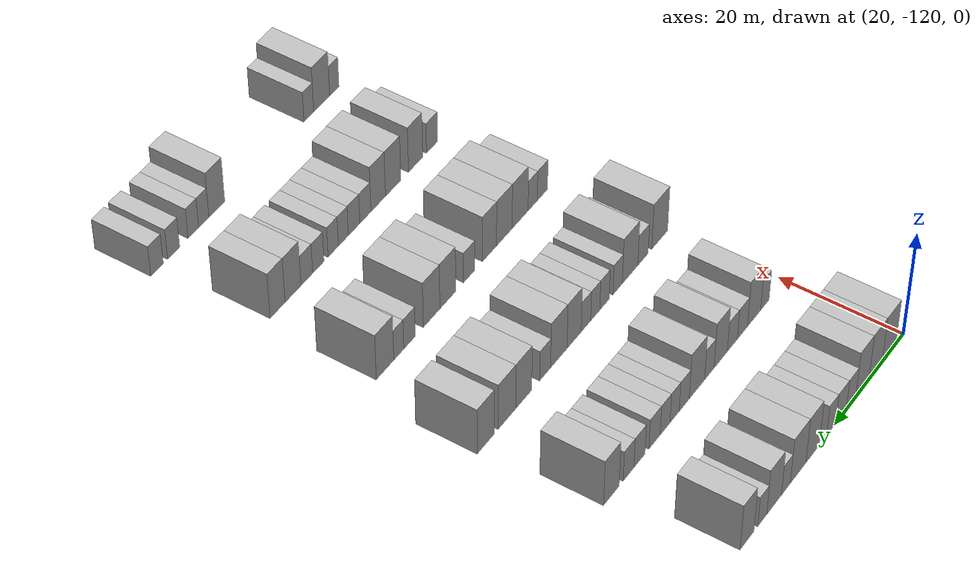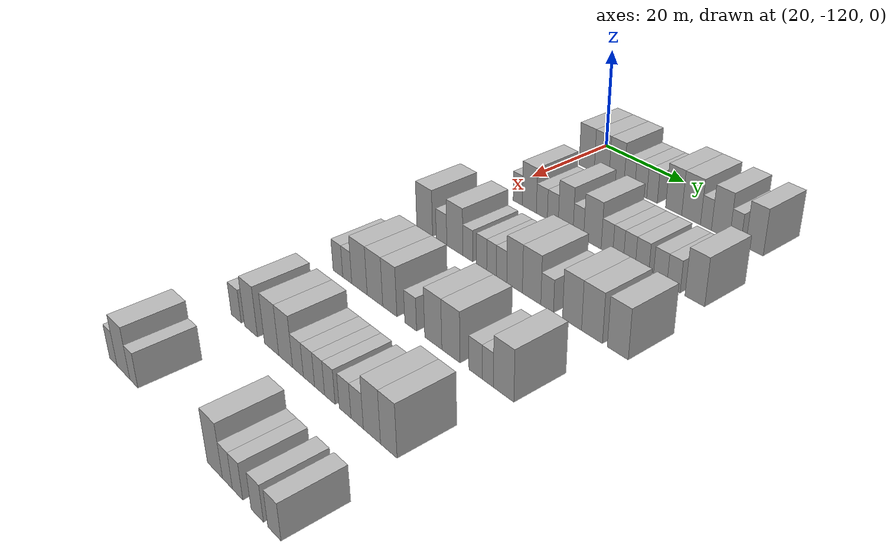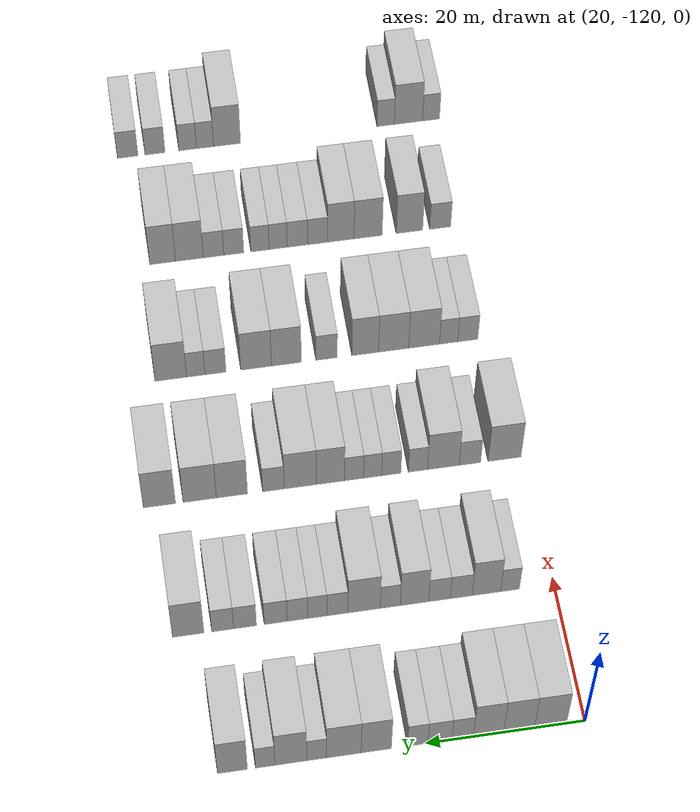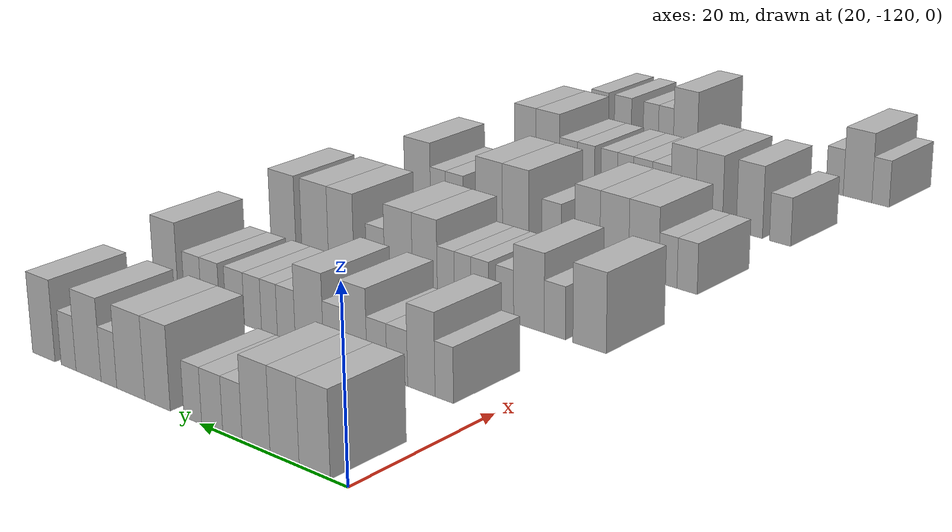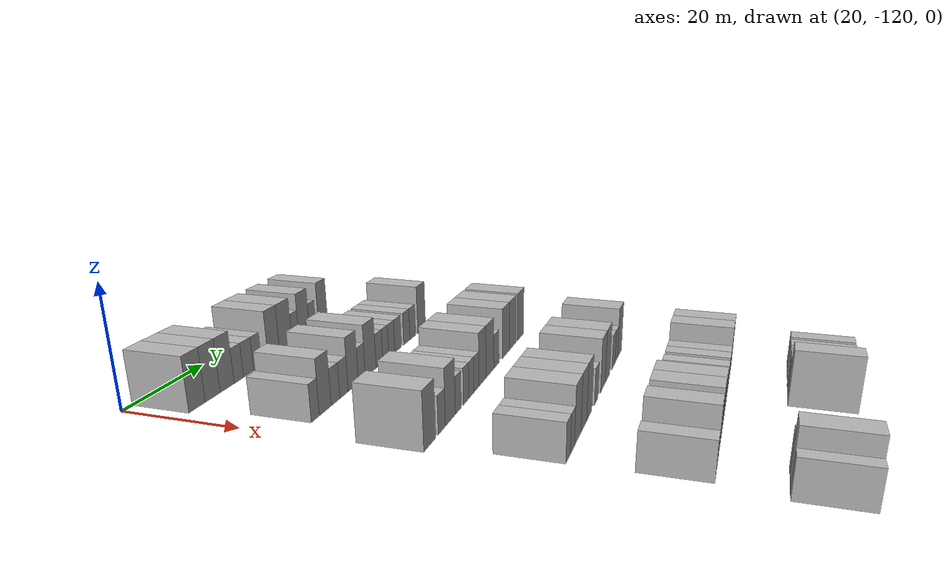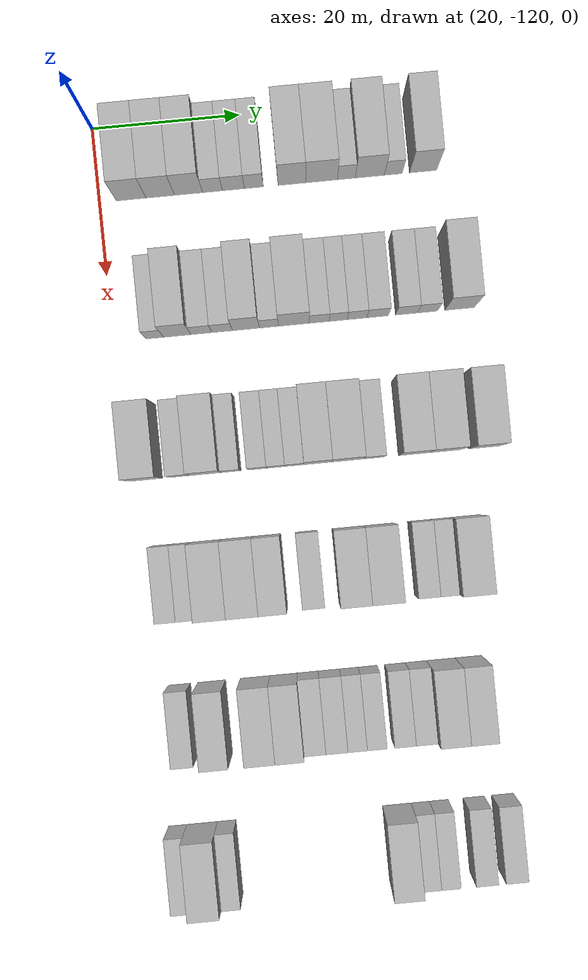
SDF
<sdf version="1.6">
 <world name="default">
  <model name="building_58">
   <static>1</static>
   <pose>25.0000 -115.6798 0 0.000000 0.000000 0.000000</pose>
   <link name="link">
    <pose>0 0 4.50 0 0 0</pose>
    <collision name="collision"><geometry><box><size>10.0000 4.0421 9.0000</size></box></geometry></collision>
    <visual name="visual">
     <cast_shadows>0</cast_shadows>
     <geometry><box><size>10.0000 4.0421 9.0000</size></box></geometry>
     <material>
      <script>
       <uri>model://HANNAS_wall/materials/scripts</uri>
       <uri>model://HANNAS_wall/materials/textures</uri>
       <name>vrc/HANNAS_wall</name>
      </script>
     </material>
    </visual>
   </link>
  </model>
  <model name="building_59">
   <static>1</static>
   <pose>25.0000 -111.7224 0 0.000000 0.000000 0.000000</pose>
   <link name="link">
    <pose>0 0 4.50 0 0 0</pose>
    <collision name="collision"><geometry><box><size>10.0000 3.8728 9.0000</size></box></geometry></collision>
    <visual name="visual">
     <cast_shadows>0</cast_shadows>
     <geometry><box><size>10.0000 3.8728 9.0000</size></box></geometry>
     <material>
      <script>
       <uri>model://HANNAS_wall/materials/scripts</uri>
       <uri>model://HANNAS_wall/materials/textures</uri>
       <name>vrc/HANNAS_wall</name>
      </script>
     </material>
    </visual>
   </link>
  </model>
  <model name="building_60">
   <static>1</static>
   <pose>25.0000 -107.8807 0 0.000000 0.000000 0.000000</pose>
   <link name="link">
    <pose>0 0 4.50 0 0 0</pose>
    <collision name="collision"><geometry><box><size>10.0000 3.8105 9.0000</size></box></geometry></collision>
    <visual name="visual">
     <cast_shadows>0</cast_shadows>
     <geometry><box><size>10.0000 3.8105 9.0000</size></box></geometry>
     <material>
      <script>
       <uri>model://HANNAS_wall/materials/scripts</uri>
       <uri>model://HANNAS_wall/materials/textures</uri>
       <name>vrc/HANNAS_wall</name>
      </script>
     </material>
    </visual>
   </link>
  </model>
  <model name="building_61">
   <static>1</static>
   <pose>25.0000 -104.6251 0 0.000000 0.000000 0.000000</pose>
   <link name="link">
    <pose>0 0 3.00 0 0 0</pose>
    <collision name="collision"><geometry><box><size>10.0000 2.7008 6.0000</size></box></geometry></collision>
    <visual name="visual">
     <cast_shadows>0</cast_shadows>
     <geometry><box><size>10.0000 2.7008 6.0000</size></box></geometry>
     <material>
      <script>
       <uri>model://HANNAS_wall/materials/scripts</uri>
       <uri>model://HANNAS_wall/materials/textures</uri>
       <name>vrc/HANNAS_wall</name>
      </script>
     </material>
    </visual>
   </link>
  </model>
  <model name="building_62">
   <static>1</static>
   <pose>25.0000 -101.7786 0 0.000000 0.000000 0.000000</pose>
   <link name="link">
    <pose>0 0 3.00 0 0 0</pose>
    <collision name="collision"><geometry><box><size>10.0000 2.9922 6.0000</size></box></geometry></collision>
    <visual name="visual">
     <cast_shadows>0</cast_shadows>
     <geometry><box><size>10.0000 2.9922 6.0000</size></box></geometry>
     <material>
      <script>
       <uri>model://HANNAS_wall/materials/scripts</uri>
       <uri>model://HANNAS_wall/materials/textures</uri>
       <name>vrc/HANNAS_wall</name>
      </script>
     </material>
    </visual>
   </link>
  </model>
  <model name="building_63">
   <static>1</static>
   <pose>25.0000 -99.0015 0 0.000000 0.000000 0.000000</pose>
   <link name="link">
    <pose>0 0 3.00 0 0 0</pose>
    <collision name="collision"><geometry><box><size>10.0000 2.5620 6.0000</size></box></geometry></collision>
    <visual name="visual">
     <cast_shadows>0</cast_shadows>
     <geometry><box><size>10.0000 2.5620 6.0000</size></box></geometry>
     <material>
      <script>
       <uri>model://HANNAS_wall/materials/scripts</uri>
       <uri>model://HANNAS_wall/materials/textures</uri>
       <name>vrc/HANNAS_wall</name>
      </script>
     </material>
    </visual>
   </link>
  </model>
  <model name="building_64">
   <static>1</static>
   <pose>25.0000 -93.8390 0 0.000000 0.000000 0.000000</pose>
   <link name="link">
    <pose>0 0 4.50 0 0 0</pose>
    <collision name="collision"><geometry><box><size>10.0000 3.7630 9.0000</size></box></geometry></collision>
    <visual name="visual">
     <cast_shadows>0</cast_shadows>
     <geometry><box><size>10.0000 3.7630 9.0000</size></box></geometry>
     <material>
      <script>
       <uri>model://HANNAS_wall/materials/scripts</uri>
       <uri>model://HANNAS_wall/materials/textures</uri>
       <name>vrc/HANNAS_wall</name>
      </script>
     </material>
    </visual>
   </link>
  </model>
  <model name="building_65">
   <static>1</static>
   <pose>25.0000 -89.8114 0 0.000000 0.000000 0.000000</pose>
   <link name="link">
    <pose>0 0 4.50 0 0 0</pose>
    <collision name="collision"><geometry><box><size>10.0000 4.2922 9.0000</size></box></geometry></collision>
    <visual name="visual">
     <cast_shadows>0</cast_shadows>
     <geometry><box><size>10.0000 4.2922 9.0000</size></box></geometry>
     <material>
      <script>
       <uri>model://HANNAS_wall/materials/scripts</uri>
       <uri>model://HANNAS_wall/materials/textures</uri>
       <name>vrc/HANNAS_wall</name>
      </script>
     </material>
    </visual>
   </link>
  </model>
  <model name="building_66">
   <static>1</static>
   <pose>25.0000 -86.4455 0 0.000000 0.000000 0.000000</pose>
   <link name="link">
    <pose>0 0 3.00 0 0 0</pose>
    <collision name="collision"><geometry><box><size>10.0000 2.4396 6.0000</size></box></geometry></collision>
    <visual name="visual">
     <cast_shadows>0</cast_shadows>
     <geometry><box><size>10.0000 2.4396 6.0000</size></box></geometry>
     <material>
      <script>
       <uri>model://HANNAS_wall/materials/scripts</uri>
       <uri>model://HANNAS_wall/materials/textures</uri>
       <name>vrc/HANNAS_wall</name>
      </script>
     </material>
    </visual>
   </link>
  </model>
  <model name="building_67">
   <static>1</static>
   <pose>25.0000 -83.2430 0 0.000000 0.000000 0.000000</pose>
   <link name="link">
    <pose>0 0 4.50 0 0 0</pose>
    <collision name="collision"><geometry><box><size>10.0000 3.9654 9.0000</size></box></geometry></collision>
    <visual name="visual">
     <cast_shadows>0</cast_shadows>
     <geometry><box><size>10.0000 3.9654 9.0000</size></box></geometry>
     <material>
      <script>
       <uri>model://HANNAS_wall/materials/scripts</uri>
       <uri>model://HANNAS_wall/materials/textures</uri>
       <name>vrc/HANNAS_wall</name>
      </script>
     </material>
    </visual>
   </link>
  </model>
  <model name="building_68">
   <static>1</static>
   <pose>25.0000 -80.0603 0 0.000000 0.000000 0.000000</pose>
   <link name="link">
    <pose>0 0 3.00 0 0 0</pose>
    <collision name="collision"><geometry><box><size>10.0000 2.4002 6.0000</size></box></geometry></collision>
    <visual name="visual">
     <cast_shadows>0</cast_shadows>
     <geometry><box><size>10.0000 2.4002 6.0000</size></box></geometry>
     <material>
      <script>
       <uri>model://HANNAS_wall/materials/scripts</uri>
       <uri>model://HANNAS_wall/materials/textures</uri>
       <name>vrc/HANNAS_wall</name>
      </script>
     </material>
    </visual>
   </link>
  </model>
  <model name="building_69">
   <static>1</static>
   <pose>25.0000 -76.0189 0 0.000000 0.000000 0.000000</pose>
   <link name="link">
    <pose>0 0 4.50 0 0 0</pose>
    <collision name="collision"><geometry><box><size>10.0000 3.6826 9.0000</size></box></geometry></collision>
    <visual name="visual">
     <cast_shadows>0</cast_shadows>
     <geometry><box><size>10.0000 3.6826 9.0000</size></box></geometry>
     <material>
      <script>
       <uri>model://HANNAS_wall/materials/scripts</uri>
       <uri>model://HANNAS_wall/materials/textures</uri>
       <name>vrc/HANNAS_wall</name>
      </script>
     </material>
    </visual>
   </link>
  </model>
  <model name="building_234">
   <static>1</static>
   <pose>44.0000 -114.2796 0 0.000000 0.000000 0.000000</pose>
   <link name="link">
    <pose>0 0 3.00 0 0 0</pose>
    <collision name="collision"><geometry><box><size>10.0000 2.4481 6.0000</size></box></geometry></collision>
    <visual name="visual">
     <cast_shadows>0</cast_shadows>
     <geometry><box><size>10.0000 2.4481 6.0000</size></box></geometry>
     <material>
      <script>
       <uri>model://HANNAS_wall/materials/scripts</uri>
       <uri>model://HANNAS_wall/materials/textures</uri>
       <name>vrc/HANNAS_wall</name>
      </script>
     </material>
    </visual>
   </link>
  </model>
  <model name="building_235">
   <static>1</static>
   <pose>44.0000 -111.2006 0 0.000000 0.000000 0.000000</pose>
   <link name="link">
    <pose>0 0 4.50 0 0 0</pose>
    <collision name="collision"><geometry><box><size>10.0000 3.7098 9.0000</size></box></geometry></collision>
    <visual name="visual">
     <cast_shadows>0</cast_shadows>
     <geometry><box><size>10.0000 3.7098 9.0000</size></box></geometry>
     <material>
      <script>
       <uri>model://HANNAS_wall/materials/scripts</uri>
       <uri>model://HANNAS_wall/materials/textures</uri>
       <name>vrc/HANNAS_wall</name>
      </script>
     </material>
    </visual>
   </link>
  </model>
  <model name="building_236">
   <static>1</static>
   <pose>44.0000 -107.9247 0 0.000000 0.000000 0.000000</pose>
   <link name="link">
    <pose>0 0 3.00 0 0 0</pose>
    <collision name="collision"><geometry><box><size>10.0000 2.8421 6.0000</size></box></geometry></collision>
    <visual name="visual">
     <cast_shadows>0</cast_shadows>
     <geometry><box><size>10.0000 2.8421 6.0000</size></box></geometry>
     <material>
      <script>
       <uri>model://HANNAS_wall/materials/scripts</uri>
       <uri>model://HANNAS_wall/materials/textures</uri>
       <name>vrc/HANNAS_wall</name>
      </script>
     </material>
    </visual>
   </link>
  </model>
  <model name="building_237">
   <static>1</static>
   <pose>44.0000 -105.1147 0 0.000000 0.000000 0.000000</pose>
   <link name="link">
    <pose>0 0 3.00 0 0 0</pose>
    <collision name="collision"><geometry><box><size>10.0000 2.7779 6.0000</size></box></geometry></collision>
    <visual name="visual">
     <cast_shadows>0</cast_shadows>
     <geometry><box><size>10.0000 2.7779 6.0000</size></box></geometry>
     <material>
      <script>
       <uri>model://HANNAS_wall/materials/scripts</uri>
       <uri>model://HANNAS_wall/materials/textures</uri>
       <name>vrc/HANNAS_wall</name>
      </script>
     </material>
    </visual>
   </link>
  </model>
  <model name="building_238">
   <static>1</static>
   <pose>44.0000 -101.8880 0 0.000000 0.000000 0.000000</pose>
   <link name="link">
    <pose>0 0 4.50 0 0 0</pose>
    <collision name="collision"><geometry><box><size>10.0000 3.6756 9.0000</size></box></geometry></collision>
    <visual name="visual">
     <cast_shadows>0</cast_shadows>
     <geometry><box><size>10.0000 3.6756 9.0000</size></box></geometry>
     <material>
      <script>
       <uri>model://HANNAS_wall/materials/scripts</uri>
       <uri>model://HANNAS_wall/materials/textures</uri>
       <name>vrc/HANNAS_wall</name>
      </script>
     </material>
    </visual>
   </link>
  </model>
  <model name="building_239">
   <static>1</static>
   <pose>44.0000 -98.7600 0 0.000000 0.000000 0.000000</pose>
   <link name="link">
    <pose>0 0 3.00 0 0 0</pose>
    <collision name="collision"><geometry><box><size>10.0000 2.5803 6.0000</size></box></geometry></collision>
    <visual name="visual">
     <cast_shadows>0</cast_shadows>
     <geometry><box><size>10.0000 2.5803 6.0000</size></box></geometry>
     <material>
      <script>
       <uri>model://HANNAS_wall/materials/scripts</uri>
       <uri>model://HANNAS_wall/materials/textures</uri>
       <name>vrc/HANNAS_wall</name>
      </script>
     </material>
    </visual>
   </link>
  </model>
  <model name="building_240">
   <static>1</static>
   <pose>44.0000 -95.3832 0 0.000000 0.000000 0.000000</pose>
   <link name="link">
    <pose>0 0 4.50 0 0 0</pose>
    <collision name="collision"><geometry><box><size>10.0000 4.1734 9.0000</size></box></geometry></collision>
    <visual name="visual">
     <cast_shadows>0</cast_shadows>
     <geometry><box><size>10.0000 4.1734 9.0000</size></box></geometry>
     <material>
      <script>
       <uri>model://HANNAS_wall/materials/scripts</uri>
       <uri>model://HANNAS_wall/materials/textures</uri>
       <name>vrc/HANNAS_wall</name>
      </script>
     </material>
    </visual>
   </link>
  </model>
  <model name="building_241">
   <static>1</static>
   <pose>44.0000 -91.9463 0 0.000000 0.000000 0.000000</pose>
   <link name="link">
    <pose>0 0 3.00 0 0 0</pose>
    <collision name="collision"><geometry><box><size>10.0000 2.7004 6.0000</size></box></geometry></collision>
    <visual name="visual">
     <cast_shadows>0</cast_shadows>
     <geometry><box><size>10.0000 2.7004 6.0000</size></box></geometry>
     <material>
      <script>
       <uri>model://HANNAS_wall/materials/scripts</uri>
       <uri>model://HANNAS_wall/materials/textures</uri>
       <name>vrc/HANNAS_wall</name>
      </script>
     </material>
    </visual>
   </link>
  </model>
  <model name="building_242">
   <static>1</static>
   <pose>44.0000 -89.3779 0 0.000000 0.000000 0.000000</pose>
   <link name="link">
    <pose>0 0 3.00 0 0 0</pose>
    <collision name="collision"><geometry><box><size>10.0000 2.4364 6.0000</size></box></geometry></collision>
    <visual name="visual">
     <cast_shadows>0</cast_shadows>
     <geometry><box><size>10.0000 2.4364 6.0000</size></box></geometry>
     <material>
      <script>
       <uri>model://HANNAS_wall/materials/scripts</uri>
       <uri>model://HANNAS_wall/materials/textures</uri>
       <name>vrc/HANNAS_wall</name>
      </script>
     </material>
    </visual>
   </link>
  </model>
  <model name="building_243">
   <static>1</static>
   <pose>44.0000 -86.8369 0 0.000000 0.000000 0.000000</pose>
   <link name="link">
    <pose>0 0 3.00 0 0 0</pose>
    <collision name="collision"><geometry><box><size>10.0000 2.6456 6.0000</size></box></geometry></collision>
    <visual name="visual">
     <cast_shadows>0</cast_shadows>
     <geometry><box><size>10.0000 2.6456 6.0000</size></box></geometry>
     <material>
      <script>
       <uri>model://HANNAS_wall/materials/scripts</uri>
       <uri>model://HANNAS_wall/materials/textures</uri>
       <name>vrc/HANNAS_wall</name>
      </script>
     </material>
    </visual>
   </link>
  </model>
  <model name="building_244">
   <static>1</static>
   <pose>44.0000 -84.0480 0 0.000000 0.000000 0.000000</pose>
   <link name="link">
    <pose>0 0 3.00 0 0 0</pose>
    <collision name="collision"><geometry><box><size>10.0000 2.9322 6.0000</size></box></geometry></collision>
    <visual name="visual">
     <cast_shadows>0</cast_shadows>
     <geometry><box><size>10.0000 2.9322 6.0000</size></box></geometry>
     <material>
      <script>
       <uri>model://HANNAS_wall/materials/scripts</uri>
       <uri>model://HANNAS_wall/materials/textures</uri>
       <name>vrc/HANNAS_wall</name>
      </script>
     </material>
    </visual>
   </link>
  </model>
  <model name="building_245">
   <static>1</static>
   <pose>44.0000 -80.1225 0 0.000000 0.000000 0.000000</pose>
   <link name="link">
    <pose>0 0 3.00 0 0 0</pose>
    <collision name="collision"><geometry><box><size>10.0000 2.9187 6.0000</size></box></geometry></collision>
    <visual name="visual">
     <cast_shadows>0</cast_shadows>
     <geometry><box><size>10.0000 2.9187 6.0000</size></box></geometry>
     <material>
      <script>
       <uri>model://HANNAS_wall/materials/scripts</uri>
       <uri>model://HANNAS_wall/materials/textures</uri>
       <name>vrc/HANNAS_wall</name>
      </script>
     </material>
    </visual>
   </link>
  </model>
  <model name="building_246">
   <static>1</static>
   <pose>44.0000 -77.2714 0 0.000000 0.000000 0.000000</pose>
   <link name="link">
    <pose>0 0 3.00 0 0 0</pose>
    <collision name="collision"><geometry><box><size>10.0000 2.7835 6.0000</size></box></geometry></collision>
    <visual name="visual">
     <cast_shadows>0</cast_shadows>
     <geometry><box><size>10.0000 2.7835 6.0000</size></box></geometry>
     <material>
      <script>
       <uri>model://HANNAS_wall/materials/scripts</uri>
       <uri>model://HANNAS_wall/materials/textures</uri>
       <name>vrc/HANNAS_wall</name>
      </script>
     </material>
    </visual>
   </link>
  </model>
  <model name="building_247">
   <static>1</static>
   <pose>44.0000 -72.8802 0 0.000000 0.000000 0.000000</pose>
   <link name="link">
    <pose>0 0 4.50 0 0 0</pose>
    <collision name="collision"><geometry><box><size>10.0000 3.9989 9.0000</size></box></geometry></collision>
    <visual name="visual">
     <cast_shadows>0</cast_shadows>
     <geometry><box><size>10.0000 3.9989 9.0000</size></box></geometry>
     <material>
      <script>
       <uri>model://HANNAS_wall/materials/scripts</uri>
       <uri>model://HANNAS_wall/materials/textures</uri>
       <name>vrc/HANNAS_wall</name>
      </script>
     </material>
    </visual>
   </link>
  </model>
  <model name="building_415">
   <static>1</static>
   <pose>63.0000 -117.2627 0 0.000000 0.000000 0.000000</pose>
   <link name="link">
    <pose>0 0 4.50 0 0 0</pose>
    <collision name="collision"><geometry><box><size>10.0000 4.4257 9.0000</size></box></geometry></collision>
    <visual name="visual">
     <cast_shadows>0</cast_shadows>
     <geometry><box><size>10.0000 4.4257 9.0000</size></box></geometry>
     <material>
      <script>
       <uri>model://HANNAS_wall/materials/scripts</uri>
       <uri>model://HANNAS_wall/materials/textures</uri>
       <name>vrc/HANNAS_wall</name>
      </script>
     </material>
    </visual>
   </link>
  </model>
  <model name="building_416">
   <static>1</static>
   <pose>63.0000 -112.6104 0 0.000000 0.000000 0.000000</pose>
   <link name="link">
    <pose>0 0 3.00 0 0 0</pose>
    <collision name="collision"><geometry><box><size>10.0000 2.8788 6.0000</size></box></geometry></collision>
    <visual name="visual">
     <cast_shadows>0</cast_shadows>
     <geometry><box><size>10.0000 2.8788 6.0000</size></box></geometry>
     <material>
      <script>
       <uri>model://HANNAS_wall/materials/scripts</uri>
       <uri>model://HANNAS_wall/materials/textures</uri>
       <name>vrc/HANNAS_wall</name>
      </script>
     </material>
    </visual>
   </link>
  </model>
  <model name="building_417">
   <static>1</static>
   <pose>63.0000 -109.0432 0 0.000000 0.000000 0.000000</pose>
   <link name="link">
    <pose>0 0 4.50 0 0 0</pose>
    <collision name="collision"><geometry><box><size>10.0000 4.2555 9.0000</size></box></geometry></collision>
    <visual name="visual">
     <cast_shadows>0</cast_shadows>
     <geometry><box><size>10.0000 4.2555 9.0000</size></box></geometry>
     <material>
      <script>
       <uri>model://HANNAS_wall/materials/scripts</uri>
       <uri>model://HANNAS_wall/materials/textures</uri>
       <name>vrc/HANNAS_wall</name>
      </script>
     </material>
    </visual>
   </link>
  </model>
  <model name="building_418">
   <static>1</static>
   <pose>63.0000 -105.6410 0 0.000000 0.000000 0.000000</pose>
   <link name="link">
    <pose>0 0 3.00 0 0 0</pose>
    <collision name="collision"><geometry><box><size>10.0000 2.5490 6.0000</size></box></geometry></collision>
    <visual name="visual">
     <cast_shadows>0</cast_shadows>
     <geometry><box><size>10.0000 2.5490 6.0000</size></box></geometry>
     <material>
      <script>
       <uri>model://HANNAS_wall/materials/scripts</uri>
       <uri>model://HANNAS_wall/materials/textures</uri>
       <name>vrc/HANNAS_wall</name>
      </script>
     </material>
    </visual>
   </link>
  </model>
  <model name="building_419">
   <static>1</static>
   <pose>63.0000 -102.0917 0 0.000000 0.000000 0.000000</pose>
   <link name="link">
    <pose>0 0 3.00 0 0 0</pose>
    <collision name="collision"><geometry><box><size>10.0000 2.5496 6.0000</size></box></geometry></collision>
    <visual name="visual">
     <cast_shadows>0</cast_shadows>
     <geometry><box><size>10.0000 2.5496 6.0000</size></box></geometry>
     <material>
      <script>
       <uri>model://HANNAS_wall/materials/scripts</uri>
       <uri>model://HANNAS_wall/materials/textures</uri>
       <name>vrc/HANNAS_wall</name>
      </script>
     </material>
    </visual>
   </link>
  </model>
  <model name="building_420">
   <static>1</static>
   <pose>63.0000 -99.6069 0 0.000000 0.000000 0.000000</pose>
   <link name="link">
    <pose>0 0 3.00 0 0 0</pose>
    <collision name="collision"><geometry><box><size>10.0000 2.4198 6.0000</size></box></geometry></collision>
    <visual name="visual">
     <cast_shadows>0</cast_shadows>
     <geometry><box><size>10.0000 2.4198 6.0000</size></box></geometry>
     <material>
      <script>
       <uri>model://HANNAS_wall/materials/scripts</uri>
       <uri>model://HANNAS_wall/materials/textures</uri>
       <name>vrc/HANNAS_wall</name>
      </script>
     </material>
    </visual>
   </link>
  </model>
  <model name="building_421">
   <static>1</static>
   <pose>63.0000 -97.1346 0 0.000000 0.000000 0.000000</pose>
   <link name="link">
    <pose>0 0 3.00 0 0 0</pose>
    <collision name="collision"><geometry><box><size>10.0000 2.5248 6.0000</size></box></geometry></collision>
    <visual name="visual">
     <cast_shadows>0</cast_shadows>
     <geometry><box><size>10.0000 2.5248 6.0000</size></box></geometry>
     <material>
      <script>
       <uri>model://HANNAS_wall/materials/scripts</uri>
       <uri>model://HANNAS_wall/materials/textures</uri>
       <name>vrc/HANNAS_wall</name>
      </script>
     </material>
    </visual>
   </link>
  </model>
  <model name="building_422">
   <static>1</static>
   <pose>63.0000 -94.0035 0 0.000000 0.000000 0.000000</pose>
   <link name="link">
    <pose>0 0 4.50 0 0 0</pose>
    <collision name="collision"><geometry><box><size>10.0000 3.7374 9.0000</size></box></geometry></collision>
    <visual name="visual">
     <cast_shadows>0</cast_shadows>
     <geometry><box><size>10.0000 3.7374 9.0000</size></box></geometry>
     <material>
      <script>
       <uri>model://HANNAS_wall/materials/scripts</uri>
       <uri>model://HANNAS_wall/materials/textures</uri>
       <name>vrc/HANNAS_wall</name>
      </script>
     </material>
    </visual>
   </link>
  </model>
  <model name="building_423">
   <static>1</static>
   <pose>63.0000 -89.9951 0 0.000000 0.000000 0.000000</pose>
   <link name="link">
    <pose>0 0 4.50 0 0 0</pose>
    <collision name="collision"><geometry><box><size>10.0000 4.2793 9.0000</size></box></geometry></collision>
    <visual name="visual">
     <cast_shadows>0</cast_shadows>
     <geometry><box><size>10.0000 4.2793 9.0000</size></box></geometry>
     <material>
      <script>
       <uri>model://HANNAS_wall/materials/scripts</uri>
       <uri>model://HANNAS_wall/materials/textures</uri>
       <name>vrc/HANNAS_wall</name>
      </script>
     </material>
    </visual>
   </link>
  </model>
  <model name="building_424">
   <static>1</static>
   <pose>63.0000 -86.4323 0 0.000000 0.000000 0.000000</pose>
   <link name="link">
    <pose>0 0 3.00 0 0 0</pose>
    <collision name="collision"><geometry><box><size>10.0000 2.8464 6.0000</size></box></geometry></collision>
    <visual name="visual">
     <cast_shadows>0</cast_shadows>
     <geometry><box><size>10.0000 2.8464 6.0000</size></box></geometry>
     <material>
      <script>
       <uri>model://HANNAS_wall/materials/scripts</uri>
       <uri>model://HANNAS_wall/materials/textures</uri>
       <name>vrc/HANNAS_wall</name>
      </script>
     </material>
    </visual>
   </link>
  </model>
  <model name="building_425">
   <static>1</static>
   <pose>63.0000 -80.9505 0 0.000000 0.000000 0.000000</pose>
   <link name="link">
    <pose>0 0 4.50 0 0 0</pose>
    <collision name="collision"><geometry><box><size>10.0000 4.1171 9.0000</size></box></geometry></collision>
    <visual name="visual">
     <cast_shadows>0</cast_shadows>
     <geometry><box><size>10.0000 4.1171 9.0000</size></box></geometry>
     <material>
      <script>
       <uri>model://HANNAS_wall/materials/scripts</uri>
       <uri>model://HANNAS_wall/materials/textures</uri>
       <name>vrc/HANNAS_wall</name>
      </script>
     </material>
    </visual>
   </link>
  </model>
  <model name="building_426">
   <static>1</static>
   <pose>63.0000 -76.7023 0 0.000000 0.000000 0.000000</pose>
   <link name="link">
    <pose>0 0 4.50 0 0 0</pose>
    <collision name="collision"><geometry><box><size>10.0000 4.3794 9.0000</size></box></geometry></collision>
    <visual name="visual">
     <cast_shadows>0</cast_shadows>
     <geometry><box><size>10.0000 4.3794 9.0000</size></box></geometry>
     <material>
      <script>
       <uri>model://HANNAS_wall/materials/scripts</uri>
       <uri>model://HANNAS_wall/materials/textures</uri>
       <name>vrc/HANNAS_wall</name>
      </script>
     </material>
    </visual>
   </link>
  </model>
  <model name="building_427">
   <static>1</static>
   <pose>63.0000 -71.4028 0 0.000000 0.000000 0.000000</pose>
   <link name="link">
    <pose>0 0 4.50 0 0 0</pose>
    <collision name="collision"><geometry><box><size>10.0000 4.2195 9.0000</size></box></geometry></collision>
    <visual name="visual">
     <cast_shadows>0</cast_shadows>
     <geometry><box><size>10.0000 4.2195 9.0000</size></box></geometry>
     <material>
      <script>
       <uri>model://HANNAS_wall/materials/scripts</uri>
       <uri>model://HANNAS_wall/materials/textures</uri>
       <name>vrc/HANNAS_wall</name>
      </script>
     </material>
    </visual>
   </link>
  </model>
  <model name="building_582">
   <static>1</static>
   <pose>82.0000 -115.8549 0 0.000000 0.000000 0.000000</pose>
   <link name="link">
    <pose>0 0 3.00 0 0 0</pose>
    <collision name="collision"><geometry><box><size>10.0000 2.7672 6.0000</size></box></geometry></collision>
    <visual name="visual">
     <cast_shadows>0</cast_shadows>
     <geometry><box><size>10.0000 2.7672 6.0000</size></box></geometry>
     <material>
      <script>
       <uri>model://HANNAS_wall/materials/scripts</uri>
       <uri>model://HANNAS_wall/materials/textures</uri>
       <name>vrc/HANNAS_wall</name>
      </script>
     </material>
    </visual>
   </link>
  </model>
  <model name="building_583">
   <static>1</static>
   <pose>82.0000 -113.2034 0 0.000000 0.000000 0.000000</pose>
   <link name="link">
    <pose>0 0 3.00 0 0 0</pose>
    <collision name="collision"><geometry><box><size>10.0000 2.5359 6.0000</size></box></geometry></collision>
    <visual name="visual">
     <cast_shadows>0</cast_shadows>
     <geometry><box><size>10.0000 2.5359 6.0000</size></box></geometry>
     <material>
      <script>
       <uri>model://HANNAS_wall/materials/scripts</uri>
       <uri>model://HANNAS_wall/materials/textures</uri>
       <name>vrc/HANNAS_wall</name>
      </script>
     </material>
    </visual>
   </link>
  </model>
  <model name="building_584">
   <static>1</static>
   <pose>82.0000 -109.8106 0 0.000000 0.000000 0.000000</pose>
   <link name="link">
    <pose>0 0 4.50 0 0 0</pose>
    <collision name="collision"><geometry><box><size>10.0000 4.2496 9.0000</size></box></geometry></collision>
    <visual name="visual">
     <cast_shadows>0</cast_shadows>
     <geometry><box><size>10.0000 4.2496 9.0000</size></box></geometry>
     <material>
      <script>
       <uri>model://HANNAS_wall/materials/scripts</uri>
       <uri>model://HANNAS_wall/materials/textures</uri>
       <name>vrc/HANNAS_wall</name>
      </script>
     </material>
    </visual>
   </link>
  </model>
  <model name="building_585">
   <static>1</static>
   <pose>82.0000 -105.6058 0 0.000000 0.000000 0.000000</pose>
   <link name="link">
    <pose>0 0 4.50 0 0 0</pose>
    <collision name="collision"><geometry><box><size>10.0000 4.1600 9.0000</size></box></geometry></collision>
    <visual name="visual">
     <cast_shadows>0</cast_shadows>
     <geometry><box><size>10.0000 4.1600 9.0000</size></box></geometry>
     <material>
      <script>
       <uri>model://HANNAS_wall/materials/scripts</uri>
       <uri>model://HANNAS_wall/materials/textures</uri>
       <name>vrc/HANNAS_wall</name>
      </script>
     </material>
    </visual>
   </link>
  </model>
  <model name="building_586">
   <static>1</static>
   <pose>82.0000 -101.6894 0 0.000000 0.000000 0.000000</pose>
   <link name="link">
    <pose>0 0 4.50 0 0 0</pose>
    <collision name="collision"><geometry><box><size>10.0000 3.6727 9.0000</size></box></geometry></collision>
    <visual name="visual">
     <cast_shadows>0</cast_shadows>
     <geometry><box><size>10.0000 3.6727 9.0000</size></box></geometry>
     <material>
      <script>
       <uri>model://HANNAS_wall/materials/scripts</uri>
       <uri>model://HANNAS_wall/materials/textures</uri>
       <name>vrc/HANNAS_wall</name>
      </script>
     </material>
    </visual>
   </link>
  </model>
  <model name="building_587">
   <static>1</static>
   <pose>82.0000 -96.3872 0 0.000000 0.000000 0.000000</pose>
   <link name="link">
    <pose>0 0 3.00 0 0 0</pose>
    <collision name="collision"><geometry><box><size>10.0000 2.9318 6.0000</size></box></geometry></collision>
    <visual name="visual">
     <cast_shadows>0</cast_shadows>
     <geometry><box><size>10.0000 2.9318 6.0000</size></box></geometry>
     <material>
      <script>
       <uri>model://HANNAS_wall/materials/scripts</uri>
       <uri>model://HANNAS_wall/materials/textures</uri>
       <name>vrc/HANNAS_wall</name>
      </script>
     </material>
    </visual>
   </link>
  </model>
  <model name="building_588">
   <static>1</static>
   <pose>82.0000 -90.8822 0 0.000000 0.000000 0.000000</pose>
   <link name="link">
    <pose>0 0 4.50 0 0 0</pose>
    <collision name="collision"><geometry><box><size>10.0000 4.0781 9.0000</size></box></geometry></collision>
    <visual name="visual">
     <cast_shadows>0</cast_shadows>
     <geometry><box><size>10.0000 4.0781 9.0000</size></box></geometry>
     <material>
      <script>
       <uri>model://HANNAS_wall/materials/scripts</uri>
       <uri>model://HANNAS_wall/materials/textures</uri>
       <name>vrc/HANNAS_wall</name>
      </script>
     </material>
    </visual>
   </link>
  </model>
  <model name="building_589">
   <static>1</static>
   <pose>82.0000 -86.7405 0 0.000000 0.000000 0.000000</pose>
   <link name="link">
    <pose>0 0 4.50 0 0 0</pose>
    <collision name="collision"><geometry><box><size>10.0000 4.2053 9.0000</size></box></geometry></collision>
    <visual name="visual">
     <cast_shadows>0</cast_shadows>
     <geometry><box><size>10.0000 4.2053 9.0000</size></box></geometry>
     <material>
      <script>
       <uri>model://HANNAS_wall/materials/scripts</uri>
       <uri>model://HANNAS_wall/materials/textures</uri>
       <name>vrc/HANNAS_wall</name>
      </script>
     </material>
    </visual>
   </link>
  </model>
  <model name="building_590">
   <static>1</static>
   <pose>82.0000 -81.1936 0 0.000000 0.000000 0.000000</pose>
   <link name="link">
    <pose>0 0 3.00 0 0 0</pose>
    <collision name="collision"><geometry><box><size>10.0000 2.8884 6.0000</size></box></geometry></collision>
    <visual name="visual">
     <cast_shadows>0</cast_shadows>
     <geometry><box><size>10.0000 2.8884 6.0000</size></box></geometry>
     <material>
      <script>
       <uri>model://HANNAS_wall/materials/scripts</uri>
       <uri>model://HANNAS_wall/materials/textures</uri>
       <name>vrc/HANNAS_wall</name>
      </script>
     </material>
    </visual>
   </link>
  </model>
  <model name="building_591">
   <static>1</static>
   <pose>82.0000 -78.5087 0 0.000000 0.000000 0.000000</pose>
   <link name="link">
    <pose>0 0 3.00 0 0 0</pose>
    <collision name="collision"><geometry><box><size>10.0000 2.4815 6.0000</size></box></geometry></collision>
    <visual name="visual">
     <cast_shadows>0</cast_shadows>
     <geometry><box><size>10.0000 2.4815 6.0000</size></box></geometry>
     <material>
      <script>
       <uri>model://HANNAS_wall/materials/scripts</uri>
       <uri>model://HANNAS_wall/materials/textures</uri>
       <name>vrc/HANNAS_wall</name>
      </script>
     </material>
    </visual>
   </link>
  </model>
  <model name="building_592">
   <static>1</static>
   <pose>82.0000 -75.1218 0 0.000000 0.000000 0.000000</pose>
   <link name="link">
    <pose>0 0 4.50 0 0 0</pose>
    <collision name="collision"><geometry><box><size>10.0000 4.2922 9.0000</size></box></geometry></collision>
    <visual name="visual">
     <cast_shadows>0</cast_shadows>
     <geometry><box><size>10.0000 4.2922 9.0000</size></box></geometry>
     <material>
      <script>
       <uri>model://HANNAS_wall/materials/scripts</uri>
       <uri>model://HANNAS_wall/materials/textures</uri>
       <name>vrc/HANNAS_wall</name>
      </script>
     </material>
    </visual>
   </link>
  </model>
  <model name="building_765">
   <static>1</static>
   <pose>101.0000 -115.4327 0 0.000000 0.000000 0.000000</pose>
   <link name="link">
    <pose>0 0 3.00 0 0 0</pose>
    <collision name="collision"><geometry><box><size>10.0000 2.9872 6.0000</size></box></geometry></collision>
    <visual name="visual">
     <cast_shadows>0</cast_shadows>
     <geometry><box><size>10.0000 2.9872 6.0000</size></box></geometry>
     <material>
      <script>
       <uri>model://HANNAS_wall/materials/scripts</uri>
       <uri>model://HANNAS_wall/materials/textures</uri>
       <name>vrc/HANNAS_wall</name>
      </script>
     </material>
    </visual>
   </link>
  </model>
  <model name="building_766">
   <static>1</static>
   <pose>101.0000 -111.0563 0 0.000000 0.000000 0.000000</pose>
   <link name="link">
    <pose>0 0 4.50 0 0 0</pose>
    <collision name="collision"><geometry><box><size>10.0000 3.7656 9.0000</size></box></geometry></collision>
    <visual name="visual">
     <cast_shadows>0</cast_shadows>
     <geometry><box><size>10.0000 3.7656 9.0000</size></box></geometry>
     <material>
      <script>
       <uri>model://HANNAS_wall/materials/scripts</uri>
       <uri>model://HANNAS_wall/materials/textures</uri>
       <name>vrc/HANNAS_wall</name>
      </script>
     </material>
    </visual>
   </link>
  </model>
  <model name="building_767">
   <static>1</static>
   <pose>101.0000 -105.1783 0 0.000000 0.000000 0.000000</pose>
   <link name="link">
    <pose>0 0 4.50 0 0 0</pose>
    <collision name="collision"><geometry><box><size>10.0000 3.9904 9.0000</size></box></geometry></collision>
    <visual name="visual">
     <cast_shadows>0</cast_shadows>
     <geometry><box><size>10.0000 3.9904 9.0000</size></box></geometry>
     <material>
      <script>
       <uri>model://HANNAS_wall/materials/scripts</uri>
       <uri>model://HANNAS_wall/materials/textures</uri>
       <name>vrc/HANNAS_wall</name>
      </script>
     </material>
    </visual>
   </link>
  </model>
  <model name="building_768">
   <static>1</static>
   <pose>101.0000 -101.3127 0 0.000000 0.000000 0.000000</pose>
   <link name="link">
    <pose>0 0 4.50 0 0 0</pose>
    <collision name="collision"><geometry><box><size>10.0000 3.7408 9.0000</size></box></geometry></collision>
    <visual name="visual">
     <cast_shadows>0</cast_shadows>
     <geometry><box><size>10.0000 3.7408 9.0000</size></box></geometry>
     <material>
      <script>
       <uri>model://HANNAS_wall/materials/scripts</uri>
       <uri>model://HANNAS_wall/materials/textures</uri>
       <name>vrc/HANNAS_wall</name>
      </script>
     </material>
    </visual>
   </link>
  </model>
  <model name="building_769">
   <static>1</static>
   <pose>101.0000 -98.0214 0 0.000000 0.000000 0.000000</pose>
   <link name="link">
    <pose>0 0 3.00 0 0 0</pose>
    <collision name="collision"><geometry><box><size>10.0000 2.8418 6.0000</size></box></geometry></collision>
    <visual name="visual">
     <cast_shadows>0</cast_shadows>
     <geometry><box><size>10.0000 2.8418 6.0000</size></box></geometry>
     <material>
      <script>
       <uri>model://HANNAS_wall/materials/scripts</uri>
       <uri>model://HANNAS_wall/materials/textures</uri>
       <name>vrc/HANNAS_wall</name>
      </script>
     </material>
    </visual>
   </link>
  </model>
  <model name="building_770">
   <static>1</static>
   <pose>101.0000 -95.1584 0 0.000000 0.000000 0.000000</pose>
   <link name="link">
    <pose>0 0 3.00 0 0 0</pose>
    <collision name="collision"><geometry><box><size>10.0000 2.8843 6.0000</size></box></geometry></collision>
    <visual name="visual">
     <cast_shadows>0</cast_shadows>
     <geometry><box><size>10.0000 2.8843 6.0000</size></box></geometry>
     <material>
      <script>
       <uri>model://HANNAS_wall/materials/scripts</uri>
       <uri>model://HANNAS_wall/materials/textures</uri>
       <name>vrc/HANNAS_wall</name>
      </script>
     </material>
    </visual>
   </link>
  </model>
  <model name="building_771">
   <static>1</static>
   <pose>101.0000 -92.4525 0 0.000000 0.000000 0.000000</pose>
   <link name="link">
    <pose>0 0 3.00 0 0 0</pose>
    <collision name="collision"><geometry><box><size>10.0000 2.5275 6.0000</size></box></geometry></collision>
    <visual name="visual">
     <cast_shadows>0</cast_shadows>
     <geometry><box><size>10.0000 2.5275 6.0000</size></box></geometry>
     <material>
      <script>
       <uri>model://HANNAS_wall/materials/scripts</uri>
       <uri>model://HANNAS_wall/materials/textures</uri>
       <name>vrc/HANNAS_wall</name>
      </script>
     </material>
    </visual>
   </link>
  </model>
  <model name="building_772">
   <static>1</static>
   <pose>101.0000 -89.8961 0 0.000000 0.000000 0.000000</pose>
   <link name="link">
    <pose>0 0 3.00 0 0 0</pose>
    <collision name="collision"><geometry><box><size>10.0000 2.5853 6.0000</size></box></geometry></collision>
    <visual name="visual">
     <cast_shadows>0</cast_shadows>
     <geometry><box><size>10.0000 2.5853 6.0000</size></box></geometry>
     <material>
      <script>
       <uri>model://HANNAS_wall/materials/scripts</uri>
       <uri>model://HANNAS_wall/materials/textures</uri>
       <name>vrc/HANNAS_wall</name>
      </script>
     </material>
    </visual>
   </link>
  </model>
  <model name="building_773">
   <static>1</static>
   <pose>101.0000 -86.1983 0 0.000000 0.000000 0.000000</pose>
   <link name="link">
    <pose>0 0 3.00 0 0 0</pose>
    <collision name="collision"><geometry><box><size>10.0000 2.8104 6.0000</size></box></geometry></collision>
    <visual name="visual">
     <cast_shadows>0</cast_shadows>
     <geometry><box><size>10.0000 2.8104 6.0000</size></box></geometry>
     <material>
      <script>
       <uri>model://HANNAS_wall/materials/scripts</uri>
       <uri>model://HANNAS_wall/materials/textures</uri>
       <name>vrc/HANNAS_wall</name>
      </script>
     </material>
    </visual>
   </link>
  </model>
  <model name="building_774">
   <static>1</static>
   <pose>101.0000 -83.3562 0 0.000000 0.000000 0.000000</pose>
   <link name="link">
    <pose>0 0 3.00 0 0 0</pose>
    <collision name="collision"><geometry><box><size>10.0000 2.8738 6.0000</size></box></geometry></collision>
    <visual name="visual">
     <cast_shadows>0</cast_shadows>
     <geometry><box><size>10.0000 2.8738 6.0000</size></box></geometry>
     <material>
      <script>
       <uri>model://HANNAS_wall/materials/scripts</uri>
       <uri>model://HANNAS_wall/materials/textures</uri>
       <name>vrc/HANNAS_wall</name>
      </script>
     </material>
    </visual>
   </link>
  </model>
  <model name="building_775">
   <static>1</static>
   <pose>101.0000 -79.9763 0 0.000000 0.000000 0.000000</pose>
   <link name="link">
    <pose>0 0 4.50 0 0 0</pose>
    <collision name="collision"><geometry><box><size>10.0000 3.8860 9.0000</size></box></geometry></collision>
    <visual name="visual">
     <cast_shadows>0</cast_shadows>
     <geometry><box><size>10.0000 3.8860 9.0000</size></box></geometry>
     <material>
      <script>
       <uri>model://HANNAS_wall/materials/scripts</uri>
       <uri>model://HANNAS_wall/materials/textures</uri>
       <name>vrc/HANNAS_wall</name>
      </script>
     </material>
    </visual>
   </link>
  </model>
  <model name="building_776">
   <static>1</static>
   <pose>101.0000 -76.2238 0 0.000000 0.000000 0.000000</pose>
   <link name="link">
    <pose>0 0 4.50 0 0 0</pose>
    <collision name="collision"><geometry><box><size>10.0000 3.6189 9.0000</size></box></geometry></collision>
    <visual name="visual">
     <cast_shadows>0</cast_shadows>
     <geometry><box><size>10.0000 3.6189 9.0000</size></box></geometry>
     <material>
      <script>
       <uri>model://HANNAS_wall/materials/scripts</uri>
       <uri>model://HANNAS_wall/materials/textures</uri>
       <name>vrc/HANNAS_wall</name>
      </script>
     </material>
    </visual>
   </link>
  </model>
  <model name="building_936">
   <static>1</static>
   <pose>120.0000 -117.4948 0 0.000000 0.000000 0.000000</pose>
   <link name="link">
    <pose>0 0 3.00 0 0 0</pose>
    <collision name="collision"><geometry><box><size>10.0000 2.4819 6.0000</size></box></geometry></collision>
    <visual name="visual">
     <cast_shadows>0</cast_shadows>
     <geometry><box><size>10.0000 2.4819 6.0000</size></box></geometry>
     <material>
      <script>
       <uri>model://HANNAS_wall/materials/scripts</uri>
       <uri>model://HANNAS_wall/materials/textures</uri>
       <name>vrc/HANNAS_wall</name>
      </script>
     </material>
    </visual>
   </link>
  </model>
  <model name="building_937">
   <static>1</static>
   <pose>120.0000 -114.1851 0 0.000000 0.000000 0.000000</pose>
   <link name="link">
    <pose>0 0 4.50 0 0 0</pose>
    <collision name="collision"><geometry><box><size>10.0000 4.1375 9.0000</size></box></geometry></collision>
    <visual name="visual">
     <cast_shadows>0</cast_shadows>
     <geometry><box><size>10.0000 4.1375 9.0000</size></box></geometry>
     <material>
      <script>
       <uri>model://HANNAS_wall/materials/scripts</uri>
       <uri>model://HANNAS_wall/materials/textures</uri>
       <name>vrc/HANNAS_wall</name>
      </script>
     </material>
    </visual>
   </link>
  </model>
  <model name="building_938">
   <static>1</static>
   <pose>120.0000 -110.8439 0 0.000000 0.000000 0.000000</pose>
   <link name="link">
    <pose>0 0 3.00 0 0 0</pose>
    <collision name="collision"><geometry><box><size>10.0000 2.5449 6.0000</size></box></geometry></collision>
    <visual name="visual">
     <cast_shadows>0</cast_shadows>
     <geometry><box><size>10.0000 2.5449 6.0000</size></box></geometry>
     <material>
      <script>
       <uri>model://HANNAS_wall/materials/scripts</uri>
       <uri>model://HANNAS_wall/materials/textures</uri>
       <name>vrc/HANNAS_wall</name>
      </script>
     </material>
    </visual>
   </link>
  </model>
  <model name="building_939">
   <static>1</static>
   <pose>120.0000 -87.7277 0 0.000000 0.000000 0.000000</pose>
   <link name="link">
    <pose>0 0 4.50 0 0 0</pose>
    <collision name="collision"><geometry><box><size>10.0000 3.8958 9.0000</size></box></geometry></collision>
    <visual name="visual">
     <cast_shadows>0</cast_shadows>
     <geometry><box><size>10.0000 3.8958 9.0000</size></box></geometry>
     <material>
      <script>
       <uri>model://HANNAS_wall/materials/scripts</uri>
       <uri>model://HANNAS_wall/materials/textures</uri>
       <name>vrc/HANNAS_wall</name>
      </script>
     </material>
    </visual>
   </link>
  </model>
  <model name="building_940">
   <static>1</static>
   <pose>120.0000 -84.5353 0 0.000000 0.000000 0.000000</pose>
   <link name="link">
    <pose>0 0 3.00 0 0 0</pose>
    <collision name="collision"><geometry><box><size>10.0000 2.4890 6.0000</size></box></geometry></collision>
    <visual name="visual">
     <cast_shadows>0</cast_shadows>
     <geometry><box><size>10.0000 2.4890 6.0000</size></box></geometry>
     <material>
      <script>
       <uri>model://HANNAS_wall/materials/scripts</uri>
       <uri>model://HANNAS_wall/materials/textures</uri>
       <name>vrc/HANNAS_wall</name>
      </script>
     </material>
    </visual>
   </link>
  </model>
  <model name="building_941">
   <static>1</static>
   <pose>120.0000 -82.0238 0 0.000000 0.000000 0.000000</pose>
   <link name="link">
    <pose>0 0 3.00 0 0 0</pose>
    <collision name="collision"><geometry><box><size>10.0000 2.5338 6.0000</size></box></geometry></collision>
    <visual name="visual">
     <cast_shadows>0</cast_shadows>
     <geometry><box><size>10.0000 2.5338 6.0000</size></box></geometry>
     <material>
      <script>
       <uri>model://HANNAS_wall/materials/scripts</uri>
       <uri>model://HANNAS_wall/materials/textures</uri>
       <name>vrc/HANNAS_wall</name>
      </script>
     </material>
    </visual>
   </link>
  </model>
  <model name="building_942">
   <static>1</static>
   <pose>120.0000 -77.3102 0 0.000000 0.000000 0.000000</pose>
   <link name="link">
    <pose>0 0 3.00 0 0 0</pose>
    <collision name="collision"><geometry><box><size>10.0000 2.8935 6.0000</size></box></geometry></collision>
    <visual name="visual">
     <cast_shadows>0</cast_shadows>
     <geometry><box><size>10.0000 2.8935 6.0000</size></box></geometry>
     <material>
      <script>
       <uri>model://HANNAS_wall/materials/scripts</uri>
       <uri>model://HANNAS_wall/materials/textures</uri>
       <name>vrc/HANNAS_wall</name>
      </script>
     </material>
    </visual>
   </link>
  </model>
  <model name="building_943">
   <static>1</static>
   <pose>120.0000 -73.3791 0 0.000000 0.000000 0.000000</pose>
   <link name="link">
    <pose>0 0 3.00 0 0 0</pose>
    <collision name="collision"><geometry><box><size>10.0000 2.9687 6.0000</size></box></geometry></collision>
    <visual name="visual">
     <cast_shadows>0</cast_shadows>
     <geometry><box><size>10.0000 2.9687 6.0000</size></box></geometry>
     <material>
      <script>
       <uri>model://HANNAS_wall/materials/scripts</uri>
       <uri>model://HANNAS_wall/materials/textures</uri>
       <name>vrc/HANNAS_wall</name>
      </script>
     </material>
    </visual>
   </link>
  </model>
 </world>
</sdf>
